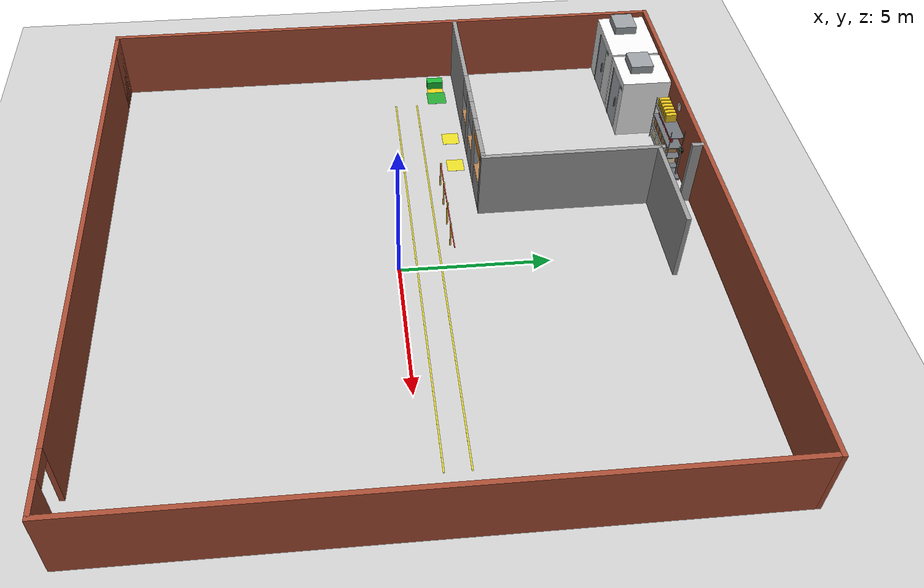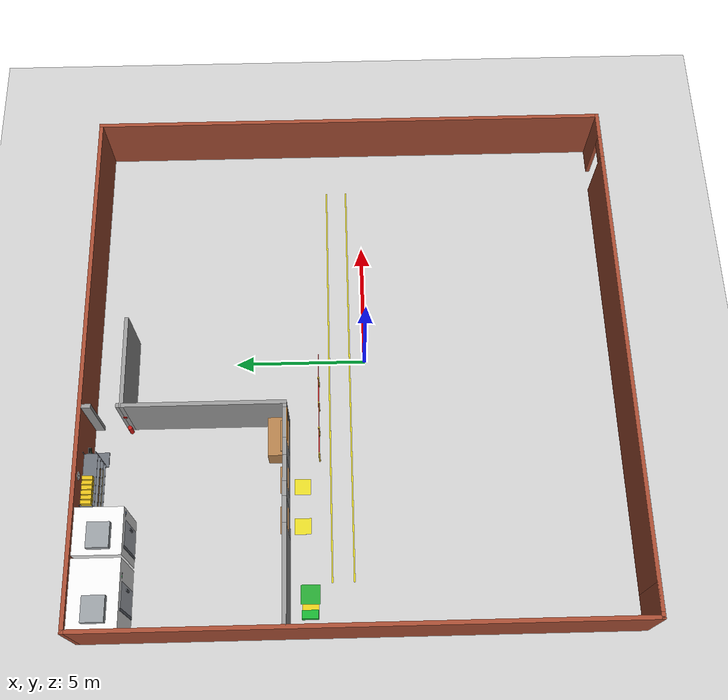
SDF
<sdf version="1.7">
 <world name="default">
  <model name="ground_plane">
   <static>1</static>
   <link name="link">
    <collision name="collision">
     <geometry><plane><normal>0 0 1</normal><size>100 100</size></plane></geometry>
     <surface><friction><ode><mu>100</mu><mu2>50</mu2></ode></friction></surface>
    </collision>
    <visual name="visual">
     <cast_shadows>0</cast_shadows>
     <geometry><plane><normal>0 0 1</normal><size>100 100</size></plane></geometry>
     <material>
      <script><uri>file://media/materials/scripts/gazebo.material</uri><name>Gazebo/Grey</name></script>
     </material>
    </visual>
   </link>
  </model>
  <model name="Untitled">
   <pose>-0.482213 0.363901 0 0 -0 0</pose>
   <link name="Wall_11">
    <collision name="Wall_11_Collision">
     <geometry><box><size>20.25 0.15 2.5</size></box></geometry>
     <pose>0 0 1.25 0 -0 0</pose>
    </collision>
    <visual name="Wall_11_Visual">
     <pose>0 0 1.25 0 -0 0</pose>
     <geometry><box><size>20.25 0.15 2.5</size></box></geometry>
     <material>
      <script><uri>file://media/materials/scripts/gazebo.material</uri><name>Gazebo/Bricks</name></script>
      <ambient>1 1 1 1</ambient>
     </material>
     <meta><layer>0</layer></meta>
    </visual>
    <pose>10.0902 0 0 0 -0 1.5708</pose>
   </link>
   <link name="Wall_12">
    <collision name="Wall_12_Collision">
     <geometry><box><size>20.25 0.15 2.5</size></box></geometry>
     <pose>0 0 1.25 0 -0 0</pose>
    </collision>
    <visual name="Wall_12_Visual">
     <pose>0 0 1.25 0 -0 0</pose>
     <geometry><box><size>20.25 0.15 2.5</size></box></geometry>
     <material>
      <script><uri>file://media/materials/scripts/gazebo.material</uri><name>Gazebo/Bricks</name></script>
      <ambient>1 1 1 1</ambient>
     </material>
     <meta><layer>0</layer></meta>
    </visual>
    <pose>0.040229 10.05 0 0 -0 3.14159</pose>
   </link>
   <link name="Wall_13">
    <collision name="Wall_13_Collision">
     <geometry><box><size>20.25 0.15 2.5</size></box></geometry>
     <pose>0 0 1.25 0 -0 0</pose>
    </collision>
    <visual name="Wall_13_Visual">
     <pose>0 0 1.25 0 -0 0</pose>
     <geometry><box><size>20.25 0.15 2.5</size></box></geometry>
     <material>
      <script><uri>file://media/materials/scripts/gazebo.material</uri><name>Gazebo/Bricks</name></script>
      <ambient>1 1 1 1</ambient>
     </material>
     <meta><layer>0</layer></meta>
    </visual>
    <pose>-10.0098 0 0 0 -0 -1.5708</pose>
   </link>
   <link name="Wall_14">
    <collision name="Wall_14_Collision">
     <geometry><box><size>1.25 0.15 2.5</size></box></geometry>
     <pose>0 0 1.25 0 -0 0</pose>
    </collision>
    <visual name="Wall_14_Visual">
     <pose>0 0 1.25 0 -0 0</pose>
     <geometry><box><size>1.25 0.15 2.5</size></box></geometry>
     <material>
      <script><uri>file://media/materials/scripts/gazebo.material</uri><name>Gazebo/Bricks</name></script>
      <ambient>1 1 1 1</ambient>
     </material>
     <meta><layer>0</layer></meta>
    </visual>
    <pose>-9.45977 -10.05 0 0 -0 0</pose>
   </link>
   <link name="Wall_9">
    <pose>0.165229 -10.05 0 0 -0 0</pose>
    <visual name="Wall_9_Visual_0">
     <pose>-1.01654 0 1.25 0 -0 0</pose>
     <geometry><box><size>17.9669 0.15 2.5</size></box></geometry>
     <material>
      <script><uri>file://media/materials/scripts/gazebo.material</uri><name>Gazebo/Bricks</name></script>
      <ambient>1 1 1 1</ambient>
     </material>
     <meta><layer>0</layer></meta>
    </visual>
    <collision name="Wall_9_Collision_0">
     <geometry><box><size>17.9669 0.15 2.5</size></box></geometry>
     <pose>-1.01654 0 1.25 0 -0 0</pose>
    </collision>
    <visual name="Wall_9_Visual_1">
     <pose>9.43346 0 1.25 0 -0 0</pose>
     <geometry><box><size>1.13309 0.15 2.5</size></box></geometry>
     <material>
      <script><uri>file://media/materials/scripts/gazebo.material</uri><name>Gazebo/Bricks</name></script>
      <ambient>1 1 1 1</ambient>
     </material>
     <meta><layer>0</layer></meta>
    </visual>
    <collision name="Wall_9_Collision_1">
     <geometry><box><size>1.13309 0.15 2.5</size></box></geometry>
     <pose>9.43346 0 1.25 0 -0 0</pose>
    </collision>
    <visual name="Wall_9_Visual_2">
     <pose>8.41691 0 2.25 0 -0 0</pose>
     <geometry><box><size>0.9 0.15 0.5</size></box></geometry>
     <material>
      <script><uri>file://media/materials/scripts/gazebo.material</uri><name>Gazebo/Bricks</name></script>
      <ambient>1 1 1 1</ambient>
     </material>
     <meta><layer>0</layer></meta>
    </visual>
    <collision name="Wall_9_Collision_2">
     <geometry><box><size>0.9 0.15 0.5</size></box></geometry>
     <pose>8.41691 0 2.25 0 -0 0</pose>
    </collision>
   </link>
   <static>1</static>
  </model>
  <model name="docking_station">
   <static>1</static>
   <pose>-9.75 2.2 0 0 0 0</pose>
   <link name="link">
    <collision name="collision">
     <pose>0 0 0.15 0 0 0</pose>
     <geometry><box><size>0.3 0.6 0.3</size></box></geometry>
    </collision>
    <visual name="visual">
     <pose>0 0 0.15 0 0 0</pose>
     <geometry><box><size>0.3 0.6 0.3</size></box></geometry>
     <material><ambient>0.1 0.7 0.2 1</ambient><diffuse>0.1 0.7 0.2 1</diffuse></material>
    </visual>
    <visual name="pad">
     <pose>0.55 0 0.001 0 0 0</pose>
     <geometry><box><size>0.8 0.6 0.002</size></box></geometry>
     <material><ambient>0.9 0.8 0.1 1</ambient><diffuse>0.9 0.8 0.1 1</diffuse></material>
    </visual>
   </link>
  </model>
  <model name="tunibot_layout">
   <static>1</static>
   <link name="wall_3">
    <pose>-2.500 6.012 1.250 0 0 1.5708</pose>
    <collision name="wall_3_collision"><geometry><box><size>6.175 0.150 2.500</size></box></geometry></collision>
    <visual name="wall_3_visual">
     <geometry><box><size>6.175 0.150 2.500</size></box></geometry>
     <material>
      <script><uri>file://media/materials/scripts/gazebo.material</uri><name>Gazebo/Grey</name></script>
     </material>
    </visual>
   </link>
   <link name="wall_4">
    <pose>-2.500 10.207 1.250 0 0 1.5708</pose>
    <collision name="wall_4_collision"><geometry><box><size>0.415 0.150 2.500</size></box></geometry></collision>
    <visual name="wall_4_visual">
     <geometry><box><size>0.415 0.150 2.500</size></box></geometry>
     <material>
      <script><uri>file://media/materials/scripts/gazebo.material</uri><name>Gazebo/Grey</name></script>
     </material>
    </visual>
   </link>
   <link name="wall_9">
    <pose>-0.788 8.900 1.250 0 0 0.0000</pose>
    <collision name="wall_9_collision"><geometry><box><size>3.575 0.150 2.500</size></box></geometry></collision>
    <visual name="wall_9_visual">
     <geometry><box><size>3.575 0.150 2.500</size></box></geometry>
     <material>
      <script><uri>file://media/materials/scripts/gazebo.material</uri><name>Gazebo/Grey</name></script>
     </material>
    </visual>
   </link>
   <link name="partition_pier_0">
    <pose>-8.707 3.000 1.250 0 0 0.0000</pose>
    <collision name="partition_pier_0_collision">
     <geometry><box><size>3.490 0.150 2.500</size></box></geometry>
    </collision>
    <visual name="partition_pier_0_visual">
     <geometry><box><size>3.490 0.150 2.500</size></box></geometry>
     <material>
      <script><uri>file://media/materials/scripts/gazebo.material</uri><name>Gazebo/Grey</name></script>
     </material>
    </visual>
   </link>
   <link name="window_1_sill">
    <pose>-6.500 3.000 0.475 0 0 0.0000</pose>
    <collision name="window_1_sill_collision">
     <geometry><box><size>1.000 0.150 0.950</size></box></geometry>
    </collision>
    <visual name="window_1_sill_visual">
     <geometry><box><size>1.000 0.150 0.950</size></box></geometry>
     <material>
      <script><uri>file://media/materials/scripts/gazebo.material</uri><name>Gazebo/Grey</name></script>
     </material>
    </visual>
   </link>
   <link name="window_1_lintel">
    <pose>-6.500 3.000 2.125 0 0 0.0000</pose>
    <collision name="window_1_lintel_collision">
     <geometry><box><size>1.000 0.150 0.750</size></box></geometry>
    </collision>
    <visual name="window_1_lintel_visual">
     <geometry><box><size>1.000 0.150 0.750</size></box></geometry>
     <material>
      <script><uri>file://media/materials/scripts/gazebo.material</uri><name>Gazebo/Grey</name></script>
     </material>
    </visual>
   </link>
   <link name="window_1_ledge">
    <pose>-6.500 3.075 0.965 0 0 0.0000</pose>
    <collision name="window_1_ledge_collision">
     <geometry><box><size>1.000 0.300 0.030</size></box></geometry>
    </collision>
    <visual name="window_1_ledge_visual">
     <geometry><box><size>1.000 0.300 0.030</size></box></geometry>
     <material>
      <script><uri>file://media/materials/scripts/gazebo.material</uri><name>Gazebo/Wood</name></script>
     </material>
    </visual>
   </link>
   <link name="partition_pier_1">
    <pose>-5.750 3.000 1.250 0 0 0.0000</pose>
    <collision name="partition_pier_1_collision">
     <geometry><box><size>0.575 0.150 2.500</size></box></geometry>
    </collision>
    <visual name="partition_pier_1_visual">
     <geometry><box><size>0.575 0.150 2.500</size></box></geometry>
     <material>
      <script><uri>file://media/materials/scripts/gazebo.material</uri><name>Gazebo/Grey</name></script>
     </material>
    </visual>
   </link>
   <link name="window_2_sill">
    <pose>-5.000 3.000 0.475 0 0 0.0000</pose>
    <collision name="window_2_sill_collision">
     <geometry><box><size>1.000 0.150 0.950</size></box></geometry>
    </collision>
    <visual name="window_2_sill_visual">
     <geometry><box><size>1.000 0.150 0.950</size></box></geometry>
     <material>
      <script><uri>file://media/materials/scripts/gazebo.material</uri><name>Gazebo/Grey</name></script>
     </material>
    </visual>
   </link>
   <link name="window_2_lintel">
    <pose>-5.000 3.000 2.125 0 0 0.0000</pose>
    <collision name="window_2_lintel_collision">
     <geometry><box><size>1.000 0.150 0.750</size></box></geometry>
    </collision>
    <visual name="window_2_lintel_visual">
     <geometry><box><size>1.000 0.150 0.750</size></box></geometry>
     <material>
      <script><uri>file://media/materials/scripts/gazebo.material</uri><name>Gazebo/Grey</name></script>
     </material>
    </visual>
   </link>
   <link name="window_2_ledge">
    <pose>-5.000 3.075 0.965 0 0 0.0000</pose>
    <collision name="window_2_ledge_collision">
     <geometry><box><size>1.000 0.300 0.030</size></box></geometry>
    </collision>
    <visual name="window_2_ledge_visual">
     <geometry><box><size>1.000 0.300 0.030</size></box></geometry>
     <material>
      <script><uri>file://media/materials/scripts/gazebo.material</uri><name>Gazebo/Wood</name></script>
     </material>
    </visual>
   </link>
   <link name="partition_pier_2">
    <pose>-4.200 3.000 1.250 0 0 0.0000</pose>
    <collision name="partition_pier_2_collision">
     <geometry><box><size>0.675 0.150 2.500</size></box></geometry>
    </collision>
    <visual name="partition_pier_2_visual">
     <geometry><box><size>0.675 0.150 2.500</size></box></geometry>
     <material>
      <script><uri>file://media/materials/scripts/gazebo.material</uri><name>Gazebo/Grey</name></script>
     </material>
    </visual>
   </link>
   <link name="takeaway_sill">
    <pose>-3.300 3.000 0.500 0 0 0.0000</pose>
    <collision name="takeaway_sill_collision">
     <geometry><box><size>1.200 0.150 1.000</size></box></geometry>
    </collision>
    <visual name="takeaway_sill_visual">
     <geometry><box><size>1.200 0.150 1.000</size></box></geometry>
     <material>
      <script><uri>file://media/materials/scripts/gazebo.material</uri><name>Gazebo/Grey</name></script>
     </material>
    </visual>
   </link>
   <link name="takeaway_lintel">
    <pose>-3.300 3.000 2.300 0 0 0.0000</pose>
    <collision name="takeaway_lintel_collision">
     <geometry><box><size>1.200 0.150 0.400</size></box></geometry>
    </collision>
    <visual name="takeaway_lintel_visual">
     <geometry><box><size>1.200 0.150 0.400</size></box></geometry>
     <material>
      <script><uri>file://media/materials/scripts/gazebo.material</uri><name>Gazebo/Grey</name></script>
     </material>
    </visual>
   </link>
   <link name="takeaway_ledge">
    <pose>-3.300 3.075 1.015 0 0 0.0000</pose>
    <collision name="takeaway_ledge_collision">
     <geometry><box><size>1.200 0.300 0.030</size></box></geometry>
    </collision>
    <visual name="takeaway_ledge_visual">
     <geometry><box><size>1.200 0.300 0.030</size></box></geometry>
     <material>
      <script><uri>file://media/materials/scripts/gazebo.material</uri><name>Gazebo/Wood</name></script>
     </material>
    </visual>
   </link>
   <link name="partition_pier_3">
    <pose>-2.600 3.000 1.250 0 0 0.0000</pose>
    <collision name="partition_pier_3_collision">
     <geometry><box><size>0.275 0.150 2.500</size></box></geometry>
    </collision>
    <visual name="partition_pier_3_visual">
     <geometry><box><size>0.275 0.150 2.500</size></box></geometry>
     <material>
      <script><uri>file://media/materials/scripts/gazebo.material</uri><name>Gazebo/Grey</name></script>
     </material>
    </visual>
   </link>
   <link name="takeaway_counter">
    <pose>-3.300 3.400 0.500 0 0 0.0000</pose>
    <collision name="takeaway_counter_collision">
     <geometry><box><size>1.500 0.600 1.000</size></box></geometry>
    </collision>
    <visual name="takeaway_counter_visual">
     <geometry><box><size>1.500 0.600 1.000</size></box></geometry>
     <material>
      <script><uri>file://media/materials/scripts/gazebo.material</uri><name>Gazebo/Wood</name></script>
     </material>
    </visual>
   </link>
   <link name="stanchion_0">
    <pose>-4.0 1.8 0.5 0 0 0</pose>
    <collision name="stanchion_0_collision">
     <geometry><cylinder><radius>0.03</radius><length>1.0</length></cylinder></geometry>
    </collision>
    <visual name="stanchion_0_visual">
     <geometry><cylinder><radius>0.03</radius><length>1.0</length></cylinder></geometry>
     <material>
      <script><uri>file://media/materials/scripts/gazebo.material</uri><name>Gazebo/Gold</name></script>
     </material>
    </visual>
   </link>
   <link name="stanchion_1">
    <pose>-3.0 1.8 0.5 0 0 0</pose>
    <collision name="stanchion_1_collision">
     <geometry><cylinder><radius>0.03</radius><length>1.0</length></cylinder></geometry>
    </collision>
    <visual name="stanchion_1_visual">
     <geometry><cylinder><radius>0.03</radius><length>1.0</length></cylinder></geometry>
     <material>
      <script><uri>file://media/materials/scripts/gazebo.material</uri><name>Gazebo/Gold</name></script>
     </material>
    </visual>
   </link>
   <link name="stanchion_2">
    <pose>-2.0 1.8 0.5 0 0 0</pose>
    <collision name="stanchion_2_collision">
     <geometry><cylinder><radius>0.03</radius><length>1.0</length></cylinder></geometry>
    </collision>
    <visual name="stanchion_2_visual">
     <geometry><cylinder><radius>0.03</radius><length>1.0</length></cylinder></geometry>
     <material>
      <script><uri>file://media/materials/scripts/gazebo.material</uri><name>Gazebo/Gold</name></script>
     </material>
    </visual>
   </link>
   <link name="stanchion_3">
    <pose>-1.0 1.8 0.5 0 0 0</pose>
    <collision name="stanchion_3_collision">
     <geometry><cylinder><radius>0.03</radius><length>1.0</length></cylinder></geometry>
    </collision>
    <visual name="stanchion_3_visual">
     <geometry><cylinder><radius>0.03</radius><length>1.0</length></cylinder></geometry>
     <material>
      <script><uri>file://media/materials/scripts/gazebo.material</uri><name>Gazebo/Gold</name></script>
     </material>
    </visual>
   </link>
   <link name="rope_0">
    <pose>-3.500 1.800 0.900 0 0 0.0000</pose>
    <visual name="rope_0_visual">
     <geometry><box><size>1.000 0.030 0.030</size></box></geometry>
     <material>
      <script><uri>file://media/materials/scripts/gazebo.material</uri><name>Gazebo/Red</name></script>
     </material>
    </visual>
   </link>
   <link name="rope_1">
    <pose>-2.500 1.800 0.900 0 0 0.0000</pose>
    <visual name="rope_1_visual">
     <geometry><box><size>1.000 0.030 0.030</size></box></geometry>
     <material>
      <script><uri>file://media/materials/scripts/gazebo.material</uri><name>Gazebo/Red</name></script>
     </material>
    </visual>
   </link>
   <link name="rope_2">
    <pose>-1.500 1.800 0.900 0 0 0.0000</pose>
    <visual name="rope_2_visual">
     <geometry><box><size>1.000 0.030 0.030</size></box></geometry>
     <material>
      <script><uri>file://media/materials/scripts/gazebo.material</uri><name>Gazebo/Red</name></script>
     </material>
    </visual>
   </link>
   <link name="rope_3">
    <pose>-0.500 1.800 0.900 0 0 0.0000</pose>
    <visual name="rope_3_visual">
     <geometry><box><size>1.000 0.030 0.030</size></box></geometry>
     <material>
      <script><uri>file://media/materials/scripts/gazebo.material</uri><name>Gazebo/Red</name></script>
     </material>
    </visual>
   </link>
   <link name="sign_takeaway">
    <pose>-3.300 2.910 2.300 0 0 0.0000</pose>
    <visual name="sign_takeaway_visual">
     <geometry><box><size>1.200 0.020 0.250</size></box></geometry>
     <material>
      <script><uri>file://media/materials/scripts/gazebo.material</uri><name>Gazebo/Orange</name></script>
     </material>
    </visual>
   </link>
   <link name="mark_dock">
    <pose>-9.000 2.200 0.002 0 0 0.0000</pose>
    <visual name="mark_dock_visual">
     <geometry><box><size>0.700 0.700 0.004</size></box></geometry>
     <material>
      <script><uri>file://media/materials/scripts/gazebo.material</uri><name>Gazebo/Green</name></script>
     </material>
    </visual>
   </link>
   <link name="mark_window_1">
    <pose>-6.500 2.450 0.002 0 0 0.0000</pose>
    <visual name="mark_window_1_visual">
     <geometry><box><size>0.600 0.600 0.004</size></box></geometry>
     <material>
      <script><uri>file://media/materials/scripts/gazebo.material</uri><name>Gazebo/Yellow</name></script>
     </material>
    </visual>
   </link>
   <link name="mark_window_2">
    <pose>-5.000 2.450 0.002 0 0 0.0000</pose>
    <visual name="mark_window_2_visual">
     <geometry><box><size>0.600 0.600 0.004</size></box></geometry>
     <material>
      <script><uri>file://media/materials/scripts/gazebo.material</uri><name>Gazebo/Yellow</name></script>
     </material>
    </visual>
   </link>
   <link name="lane_0_l">
    <pose>-0.450 0.600 0.002 0 0 0.0000</pose>
    <visual name="lane_0_l_visual">
     <geometry><box><size>16.300 0.050 0.004</size></box></geometry>
     <material>
      <script><uri>file://media/materials/scripts/gazebo.material</uri><name>Gazebo/Yellow</name></script>
     </material>
    </visual>
   </link>
   <link name="lane_0_r">
    <pose>-0.450 1.400 0.002 0 0 0.0000</pose>
    <visual name="lane_0_r_visual">
     <geometry><box><size>16.300 0.050 0.004</size></box></geometry>
     <material>
      <script><uri>file://media/materials/scripts/gazebo.material</uri><name>Gazebo/Yellow</name></script>
     </material>
    </visual>
   </link>
   <link name="k_walkin_cooler">
    <collision name="k_walkin_cooler_c0">
     <pose>-9.207 9.470 1.150 0 0 0.0000</pose>
     <geometry><box><size>2.415 1.740 2.300</size></box></geometry>
    </collision>
    <visual name="k_walkin_cooler_v0">
     <pose>-9.207 9.470 1.150 0 0 0.0000</pose>
     <geometry><box><size>2.415 1.740 2.300</size></box></geometry>
     <material>
      <ambient>0.57 0.57 0.57 1</ambient>
      <diffuse>0.95 0.95 0.95 1</diffuse>
      <specular>0.30 0.30 0.30 1</specular>
     </material>
    </visual>
    <visual name="k_walkin_cooler_v1">
     <pose>-9.207 8.593 1.025 0 0 0.0000</pose>
     <geometry><box><size>0.900 0.015 1.950</size></box></geometry>
     <material>
      <ambient>0.44 0.46 0.47 1</ambient>
      <diffuse>0.74 0.76 0.79 1</diffuse>
      <specular>0.80 0.80 0.80 1</specular>
     </material>
    </visual>
    <visual name="k_walkin_cooler_v2">
     <pose>-8.922 8.562 1.100 0 0 0.0000</pose>
     <geometry><box><size>0.070 0.045 0.400</size></box></geometry>
     <material>
      <ambient>0.25 0.26 0.28 1</ambient>
      <diffuse>0.42 0.44 0.47 1</diffuse>
      <specular>0.90 0.90 0.90 1</specular>
     </material>
    </visual>
    <visual name="k_walkin_cooler_v3">
     <pose>-9.707 8.593 1.025 0 0 0.0000</pose>
     <geometry><box><size>0.100 0.015 2.050</size></box></geometry>
     <material>
      <ambient>0.25 0.26 0.28 1</ambient>
      <diffuse>0.42 0.44 0.47 1</diffuse>
      <specular>0.15 0.15 0.15 1</specular>
     </material>
    </visual>
    <visual name="k_walkin_cooler_v4">
     <pose>-8.557 8.595 2.000 0 0 0.0000</pose>
     <geometry><box><size>0.200 0.010 0.100</size></box></geometry>
     <material>
      <ambient>0.02 0.02 0.02 1</ambient>
      <diffuse>0.03 0.03 0.03 1</diffuse>
      <specular>0.15 0.15 0.15 1</specular>
     </material>
    </visual>
    <visual name="k_walkin_cooler_v5">
     <pose>-8.557 8.589 2.000 0 0 0.0000</pose>
     <geometry><box><size>0.160 0.002 0.060</size></box></geometry>
     <material>
      <ambient>0.00 0.48 0.12 1</ambient>
      <diffuse>0.00 0.80 0.20 1</diffuse>
      <specular>0.15 0.15 0.15 1</specular>
      <emissive>0.00 0.80 0.20 1</emissive>
     </material>
    </visual>
    <visual name="k_walkin_cooler_v6">
     <pose>-9.765 9.400 2.450 0 0 0.0000</pose>
     <geometry><box><size>0.900 0.800 0.300</size></box></geometry>
     <material>
      <ambient>0.36 0.37 0.38 1</ambient>
      <diffuse>0.60 0.62 0.64 1</diffuse>
      <specular>0.15 0.15 0.15 1</specular>
     </material>
    </visual>
   </link>
   <link name="k_walkin_freezer">
    <collision name="k_walkin_freezer_c0">
     <pose>-7.050 9.470 1.150 0 0 0.0000</pose>
     <geometry><box><size>1.700 1.740 2.300</size></box></geometry>
    </collision>
    <visual name="k_walkin_freezer_v0">
     <pose>-7.050 9.470 1.150 0 0 0.0000</pose>
     <geometry><box><size>1.700 1.740 2.300</size></box></geometry>
     <material>
      <ambient>0.57 0.57 0.57 1</ambient>
      <diffuse>0.95 0.95 0.95 1</diffuse>
      <specular>0.30 0.30 0.30 1</specular>
     </material>
    </visual>
    <visual name="k_walkin_freezer_v1">
     <pose>-7.050 8.593 1.025 0 0 0.0000</pose>
     <geometry><box><size>0.900 0.015 1.950</size></box></geometry>
     <material>
      <ambient>0.44 0.46 0.47 1</ambient>
      <diffuse>0.74 0.76 0.79 1</diffuse>
      <specular>0.80 0.80 0.80 1</specular>
     </material>
    </visual>
    <visual name="k_walkin_freezer_v2">
     <pose>-6.765 8.562 1.100 0 0 0.0000</pose>
     <geometry><box><size>0.070 0.045 0.400</size></box></geometry>
     <material>
      <ambient>0.25 0.26 0.28 1</ambient>
      <diffuse>0.42 0.44 0.47 1</diffuse>
      <specular>0.90 0.90 0.90 1</specular>
     </material>
    </visual>
    <visual name="k_walkin_freezer_v3">
     <pose>-7.550 8.593 1.025 0 0 0.0000</pose>
     <geometry><box><size>0.100 0.015 2.050</size></box></geometry>
     <material>
      <ambient>0.25 0.26 0.28 1</ambient>
      <diffuse>0.42 0.44 0.47 1</diffuse>
      <specular>0.15 0.15 0.15 1</specular>
     </material>
    </visual>
    <visual name="k_walkin_freezer_v4">
     <pose>-6.400 8.595 2.000 0 0 0.0000</pose>
     <geometry><box><size>0.200 0.010 0.100</size></box></geometry>
     <material>
      <ambient>0.02 0.02 0.02 1</ambient>
      <diffuse>0.03 0.03 0.03 1</diffuse>
      <specular>0.15 0.15 0.15 1</specular>
     </material>
    </visual>
    <visual name="k_walkin_freezer_v5">
     <pose>-6.400 8.589 2.000 0 0 0.0000</pose>
     <geometry><box><size>0.160 0.002 0.060</size></box></geometry>
     <material>
      <ambient>0.12 0.30 0.60 1</ambient>
      <diffuse>0.20 0.50 1.00 1</diffuse>
      <specular>0.15 0.15 0.15 1</specular>
      <emissive>0.20 0.50 1.00 1</emissive>
     </material>
    </visual>
    <visual name="k_walkin_freezer_v6">
     <pose>-7.250 9.400 2.450 0 0 0.0000</pose>
     <geometry><box><size>0.900 0.800 0.300</size></box></geometry>
     <material>
      <ambient>0.36 0.37 0.38 1</ambient>
      <diffuse>0.60 0.62 0.64 1</diffuse>
      <specular>0.15 0.15 0.15 1</specular>
     </material>
    </visual>
   </link>
   <link name="k_dry_storage">
    <collision name="k_dry_storage_c0">
     <pose>-5.000 10.090 0.900 0 0 0</pose>
     <geometry><box><size>2.000 0.500 1.800</size></box></geometry>
    </collision>
    <visual name="k_dry_storage_v0">
     <pose>-5.985 9.855 0.900 0 0 0</pose>
     <geometry><cylinder><radius>0.013</radius><length>1.800</length></cylinder></geometry>
     <material>
      <ambient>0.25 0.26 0.28 1</ambient>
      <diffuse>0.42 0.44 0.47 1</diffuse>
      <specular>0.50 0.50 0.50 1</specular>
     </material>
    </visual>
    <visual name="k_dry_storage_v1">
     <pose>-5.985 10.325 0.900 0 0 0</pose>
     <geometry><cylinder><radius>0.013</radius><length>1.800</length></cylinder></geometry>
     <material>
      <ambient>0.25 0.26 0.28 1</ambient>
      <diffuse>0.42 0.44 0.47 1</diffuse>
      <specular>0.50 0.50 0.50 1</specular>
     </material>
    </visual>
    <visual name="k_dry_storage_v2">
     <pose>-4.015 9.855 0.900 0 0 0</pose>
     <geometry><cylinder><radius>0.013</radius><length>1.800</length></cylinder></geometry>
     <material>
      <ambient>0.25 0.26 0.28 1</ambient>
      <diffuse>0.42 0.44 0.47 1</diffuse>
      <specular>0.50 0.50 0.50 1</specular>
     </material>
    </visual>
    <visual name="k_dry_storage_v3">
     <pose>-4.015 10.325 0.900 0 0 0</pose>
     <geometry><cylinder><radius>0.013</radius><length>1.800</length></cylinder></geometry>
     <material>
      <ambient>0.25 0.26 0.28 1</ambient>
      <diffuse>0.42 0.44 0.47 1</diffuse>
      <specular>0.50 0.50 0.50 1</specular>
     </material>
    </visual>
    <visual name="k_dry_storage_v4">
     <pose>-5.000 10.090 0.160 0 0 0.0000</pose>
     <geometry><box><size>2.000 0.500 0.020</size></box></geometry>
     <material>
      <ambient>0.25 0.26 0.28 1</ambient>
      <diffuse>0.42 0.44 0.47 1</diffuse>
      <specular>0.40 0.40 0.40 1</specular>
     </material>
    </visual>
    <visual name="k_dry_storage_v5">
     <pose>-5.000 10.090 0.610 0 0 0.0000</pose>
     <geometry><box><size>2.000 0.500 0.020</size></box></geometry>
     <material>
      <ambient>0.25 0.26 0.28 1</ambient>
      <diffuse>0.42 0.44 0.47 1</diffuse>
      <specular>0.40 0.40 0.40 1</specular>
     </material>
    </visual>
    <visual name="k_dry_storage_v6">
     <pose>-5.000 10.090 1.060 0 0 0.0000</pose>
     <geometry><box><size>2.000 0.500 0.020</size></box></geometry>
     <material>
      <ambient>0.25 0.26 0.28 1</ambient>
      <diffuse>0.42 0.44 0.47 1</diffuse>
      <specular>0.40 0.40 0.40 1</specular>
     </material>
    </visual>
    <visual name="k_dry_storage_v7">
     <pose>-5.000 10.090 1.510 0 0 0.0000</pose>
     <geometry><box><size>2.000 0.500 0.020</size></box></geometry>
     <material>
      <ambient>0.25 0.26 0.28 1</ambient>
      <diffuse>0.42 0.44 0.47 1</diffuse>
      <specular>0.40 0.40 0.40 1</specular>
     </material>
    </visual>
    <visual name="k_dry_storage_v8">
     <pose>-5.750 10.090 0.295 0 0 0.0000</pose>
     <geometry><box><size>0.400 0.380 0.250</size></box></geometry>
     <material>
      <ambient>0.54 0.51 0.42 1</ambient>
      <diffuse>0.90 0.85 0.70 1</diffuse>
      <specular>0.15 0.15 0.15 1</specular>
     </material>
    </visual>
    <visual name="k_dry_storage_v9">
     <pose>-5.310 10.090 0.295 0 0 0.0000</pose>
     <geometry><box><size>0.400 0.380 0.250</size></box></geometry>
     <material>
      <ambient>0.54 0.51 0.42 1</ambient>
      <diffuse>0.90 0.85 0.70 1</diffuse>
      <specular>0.15 0.15 0.15 1</specular>
     </material>
    </visual>
    <visual name="k_dry_storage_v10">
     <pose>-4.870 10.090 0.295 0 0 0.0000</pose>
     <geometry><box><size>0.400 0.380 0.250</size></box></geometry>
     <material>
      <ambient>0.54 0.51 0.42 1</ambient>
      <diffuse>0.90 0.85 0.70 1</diffuse>
      <specular>0.15 0.15 0.15 1</specular>
     </material>
    </visual>
    <visual name="k_dry_storage_v11">
     <pose>-4.430 10.090 0.295 0 0 0.0000</pose>
     <geometry><box><size>0.400 0.380 0.250</size></box></geometry>
     <material>
      <ambient>0.54 0.51 0.42 1</ambient>
      <diffuse>0.90 0.85 0.70 1</diffuse>
      <specular>0.15 0.15 0.15 1</specular>
     </material>
    </visual>
    <visual name="k_dry_storage_v12">
     <pose>-5.800 10.090 0.770 0 0 0.0000</pose>
     <geometry><box><size>0.300 0.380 0.300</size></box></geometry>
     <material>
      <ambient>0.40 0.30 0.19 1</ambient>
      <diffuse>0.66 0.50 0.32 1</diffuse>
      <specular>0.15 0.15 0.15 1</specular>
     </material>
    </visual>
    <visual name="k_dry_storage_v13">
     <pose>-5.460 10.090 0.770 0 0 0.0000</pose>
     <geometry><box><size>0.300 0.380 0.300</size></box></geometry>
     <material>
      <ambient>0.40 0.30 0.19 1</ambient>
      <diffuse>0.66 0.50 0.32 1</diffuse>
      <specular>0.15 0.15 0.15 1</specular>
     </material>
    </visual>
    <visual name="k_dry_storage_v14">
     <pose>-5.120 10.090 0.770 0 0 0.0000</pose>
     <geometry><box><size>0.300 0.380 0.300</size></box></geometry>
     <material>
      <ambient>0.40 0.30 0.19 1</ambient>
      <diffuse>0.66 0.50 0.32 1</diffuse>
      <specular>0.15 0.15 0.15 1</specular>
     </material>
    </visual>
    <visual name="k_dry_storage_v15">
     <pose>-4.780 10.090 0.770 0 0 0.0000</pose>
     <geometry><box><size>0.300 0.380 0.300</size></box></geometry>
     <material>
      <ambient>0.40 0.30 0.19 1</ambient>
      <diffuse>0.66 0.50 0.32 1</diffuse>
      <specular>0.15 0.15 0.15 1</specular>
     </material>
    </visual>
    <visual name="k_dry_storage_v16">
     <pose>-4.440 10.090 0.770 0 0 0.0000</pose>
     <geometry><box><size>0.300 0.380 0.300</size></box></geometry>
     <material>
      <ambient>0.40 0.30 0.19 1</ambient>
      <diffuse>0.66 0.50 0.32 1</diffuse>
      <specular>0.15 0.15 0.15 1</specular>
     </material>
    </visual>
    <visual name="k_dry_storage_v17">
     <pose>-5.900 10.050 1.140 0 0 0</pose>
     <geometry><cylinder><radius>0.050</radius><length>0.140</length></cylinder></geometry>
     <material>
      <ambient>0.45 0.06 0.05 1</ambient>
      <diffuse>0.75 0.10 0.08 1</diffuse>
      <specular>0.60 0.60 0.60 1</specular>
     </material>
    </visual>
    <visual name="k_dry_storage_v18">
     <pose>-5.760 10.050 1.140 0 0 0</pose>
     <geometry><cylinder><radius>0.050</radius><length>0.140</length></cylinder></geometry>
     <material>
      <ambient>0.45 0.06 0.05 1</ambient>
      <diffuse>0.75 0.10 0.08 1</diffuse>
      <specular>0.60 0.60 0.60 1</specular>
     </material>
    </visual>
    <visual name="k_dry_storage_v19">
     <pose>-5.620 10.050 1.140 0 0 0</pose>
     <geometry><cylinder><radius>0.050</radius><length>0.140</length></cylinder></geometry>
     <material>
      <ambient>0.45 0.06 0.05 1</ambient>
      <diffuse>0.75 0.10 0.08 1</diffuse>
      <specular>0.60 0.60 0.60 1</specular>
     </material>
    </visual>
    <visual name="k_dry_storage_v20">
     <pose>-5.480 10.050 1.140 0 0 0</pose>
     <geometry><cylinder><radius>0.050</radius><length>0.140</length></cylinder></geometry>
     <material>
      <ambient>0.45 0.06 0.05 1</ambient>
      <diffuse>0.75 0.10 0.08 1</diffuse>
      <specular>0.60 0.60 0.60 1</specular>
     </material>
    </visual>
    <visual name="k_dry_storage_v21">
     <pose>-5.340 10.050 1.140 0 0 0</pose>
     <geometry><cylinder><radius>0.050</radius><length>0.140</length></cylinder></geometry>
     <material>
      <ambient>0.45 0.06 0.05 1</ambient>
      <diffuse>0.75 0.10 0.08 1</diffuse>
      <specular>0.60 0.60 0.60 1</specular>
     </material>
    </visual>
    <visual name="k_dry_storage_v22">
     <pose>-5.200 10.050 1.140 0 0 0</pose>
     <geometry><cylinder><radius>0.050</radius><length>0.140</length></cylinder></geometry>
     <material>
      <ambient>0.45 0.06 0.05 1</ambient>
      <diffuse>0.75 0.10 0.08 1</diffuse>
      <specular>0.60 0.60 0.60 1</specular>
     </material>
    </visual>
    <visual name="k_dry_storage_v23">
     <pose>-5.060 10.050 1.140 0 0 0</pose>
     <geometry><cylinder><radius>0.050</radius><length>0.140</length></cylinder></geometry>
     <material>
      <ambient>0.45 0.06 0.05 1</ambient>
      <diffuse>0.75 0.10 0.08 1</diffuse>
      <specular>0.60 0.60 0.60 1</specular>
     </material>
    </visual>
    <visual name="k_dry_storage_v24">
     <pose>-4.920 10.050 1.140 0 0 0</pose>
     <geometry><cylinder><radius>0.050</radius><length>0.140</length></cylinder></geometry>
     <material>
      <ambient>0.45 0.06 0.05 1</ambient>
      <diffuse>0.75 0.10 0.08 1</diffuse>
      <specular>0.60 0.60 0.60 1</specular>
     </material>
    </visual>
    <visual name="k_dry_storage_v25">
     <pose>-4.780 10.050 1.140 0 0 0</pose>
     <geometry><cylinder><radius>0.050</radius><length>0.140</length></cylinder></geometry>
     <material>
      <ambient>0.45 0.06 0.05 1</ambient>
      <diffuse>0.75 0.10 0.08 1</diffuse>
      <specular>0.60 0.60 0.60 1</specular>
     </material>
    </visual>
    <visual name="k_dry_storage_v26">
     <pose>-4.640 10.050 1.140 0 0 0</pose>
     <geometry><cylinder><radius>0.050</radius><length>0.140</length></cylinder></geometry>
     <material>
      <ambient>0.45 0.06 0.05 1</ambient>
      <diffuse>0.75 0.10 0.08 1</diffuse>
      <specular>0.60 0.60 0.60 1</specular>
     </material>
    </visual>
    <visual name="k_dry_storage_v27">
     <pose>-4.500 10.050 1.140 0 0 0</pose>
     <geometry><cylinder><radius>0.050</radius><length>0.140</length></cylinder></geometry>
     <material>
      <ambient>0.45 0.06 0.05 1</ambient>
      <diffuse>0.75 0.10 0.08 1</diffuse>
      <specular>0.60 0.60 0.60 1</specular>
     </material>
    </visual>
    <visual name="k_dry_storage_v28">
     <pose>-4.360 10.050 1.140 0 0 0</pose>
     <geometry><cylinder><radius>0.050</radius><length>0.140</length></cylinder></geometry>
     <material>
      <ambient>0.45 0.06 0.05 1</ambient>
      <diffuse>0.75 0.10 0.08 1</diffuse>
      <specular>0.60 0.60 0.60 1</specular>
     </material>
    </visual>
    <visual name="k_dry_storage_v29">
     <pose>-5.880 10.090 1.670 0 0 0.0000</pose>
     <geometry><box><size>0.140 0.380 0.300</size></box></geometry>
     <material>
      <ambient>0.54 0.45 0.06 1</ambient>
      <diffuse>0.90 0.75 0.10 1</diffuse>
      <specular>0.15 0.15 0.15 1</specular>
     </material>
    </visual>
    <visual name="k_dry_storage_v30">
     <pose>-5.700 10.090 1.670 0 0 0.0000</pose>
     <geometry><box><size>0.140 0.380 0.300</size></box></geometry>
     <material>
      <ambient>0.54 0.45 0.06 1</ambient>
      <diffuse>0.90 0.75 0.10 1</diffuse>
      <specular>0.15 0.15 0.15 1</specular>
     </material>
    </visual>
    <visual name="k_dry_storage_v31">
     <pose>-5.520 10.090 1.670 0 0 0.0000</pose>
     <geometry><box><size>0.140 0.380 0.300</size></box></geometry>
     <material>
      <ambient>0.54 0.45 0.06 1</ambient>
      <diffuse>0.90 0.75 0.10 1</diffuse>
      <specular>0.15 0.15 0.15 1</specular>
     </material>
    </visual>
    <visual name="k_dry_storage_v32">
     <pose>-5.340 10.090 1.670 0 0 0.0000</pose>
     <geometry><box><size>0.140 0.380 0.300</size></box></geometry>
     <material>
      <ambient>0.54 0.45 0.06 1</ambient>
      <diffuse>0.90 0.75 0.10 1</diffuse>
      <specular>0.15 0.15 0.15 1</specular>
     </material>
    </visual>
    <visual name="k_dry_storage_v33">
     <pose>-5.160 10.090 1.670 0 0 0.0000</pose>
     <geometry><box><size>0.140 0.380 0.300</size></box></geometry>
     <material>
      <ambient>0.54 0.45 0.06 1</ambient>
      <diffuse>0.90 0.75 0.10 1</diffuse>
      <specular>0.15 0.15 0.15 1</specular>
     </material>
    </visual>
    <visual name="k_dry_storage_v34">
     <pose>-4.980 10.090 1.670 0 0 0.0000</pose>
     <geometry><box><size>0.140 0.380 0.300</size></box></geometry>
     <material>
      <ambient>0.54 0.45 0.06 1</ambient>
      <diffuse>0.90 0.75 0.10 1</diffuse>
      <specular>0.15 0.15 0.15 1</specular>
     </material>
    </visual>
    <visual name="k_dry_storage_v35">
     <pose>-5.000 10.330 2.100 1.5708 0 0</pose>
     <geometry><cylinder><radius>0.150</radius><length>0.020</length></cylinder></geometry>
     <material>
      <ambient>0.57 0.57 0.57 1</ambient>
      <diffuse>0.95 0.95 0.95 1</diffuse>
      <specular>0.15 0.15 0.15 1</specular>
     </material>
    </visual>
    <visual name="k_dry_storage_v36">
     <pose>-5.000 10.315 2.150 0 0 0.0000</pose>
     <geometry><box><size>0.010 0.010 0.100</size></box></geometry>
     <material>
      <ambient>0.02 0.02 0.02 1</ambient>
      <diffuse>0.03 0.03 0.03 1</diffuse>
      <specular>0.15 0.15 0.15 1</specular>
     </material>
    </visual>
   </link>
   <link name="k_receiving">
    <visual name="k_receiving_v0">
     <pose>-3.775 10.025 0.040 0 0 0.0000</pose>
     <geometry><box><size>0.550 0.550 0.080</size></box></geometry>
     <material>
      <ambient>0.25 0.26 0.28 1</ambient>
      <diffuse>0.42 0.44 0.47 1</diffuse>
      <specular>0.60 0.60 0.60 1</specular>
     </material>
    </visual>
    <visual name="k_receiving_v1">
     <pose>-3.775 10.225 0.590 0 0 0.0000</pose>
     <geometry><box><size>0.050 0.050 1.020</size></box></geometry>
     <material>
      <ambient>0.25 0.26 0.28 1</ambient>
      <diffuse>0.42 0.44 0.47 1</diffuse>
      <specular>0.15 0.15 0.15 1</specular>
     </material>
    </visual>
    <visual name="k_receiving_v2">
     <pose>-3.775 10.220 1.175 0 0 0.0000</pose>
     <geometry><box><size>0.210 0.100 0.150</size></box></geometry>
     <material>
      <ambient>0.02 0.02 0.02 1</ambient>
      <diffuse>0.03 0.03 0.03 1</diffuse>
      <specular>0.15 0.15 0.15 1</specular>
     </material>
    </visual>
    <visual name="k_receiving_v3">
     <pose>-3.775 10.168 1.175 0 0 0.0000</pose>
     <geometry><box><size>0.170 0.005 0.090</size></box></geometry>
     <material>
      <ambient>0.06 0.30 0.12 1</ambient>
      <diffuse>0.10 0.50 0.20 1</diffuse>
      <specular>0.15 0.15 0.15 1</specular>
      <emissive>0.05 0.40 0.10 1</emissive>
     </material>
    </visual>
    <visual name="k_receiving_v4">
     <pose>-2.665 8.950 0.250 0 0 0</pose>
     <geometry><cylinder><radius>0.080</radius><length>0.500</length></cylinder></geometry>
     <material>
      <ambient>0.47 0.06 0.05 1</ambient>
      <diffuse>0.78 0.10 0.08 1</diffuse>
      <specular>0.60 0.60 0.60 1</specular>
     </material>
    </visual>
    <visual name="k_receiving_v5">
     <pose>-2.585 8.950 1.375 0 0 0.0000</pose>
     <geometry><box><size>0.020 0.140 0.150</size></box></geometry>
     <material>
      <ambient>0.47 0.06 0.05 1</ambient>
      <diffuse>0.78 0.10 0.08 1</diffuse>
      <specular>0.15 0.15 0.15 1</specular>
     </material>
    </visual>
   </link>
  </model>
 </world>
</sdf>
